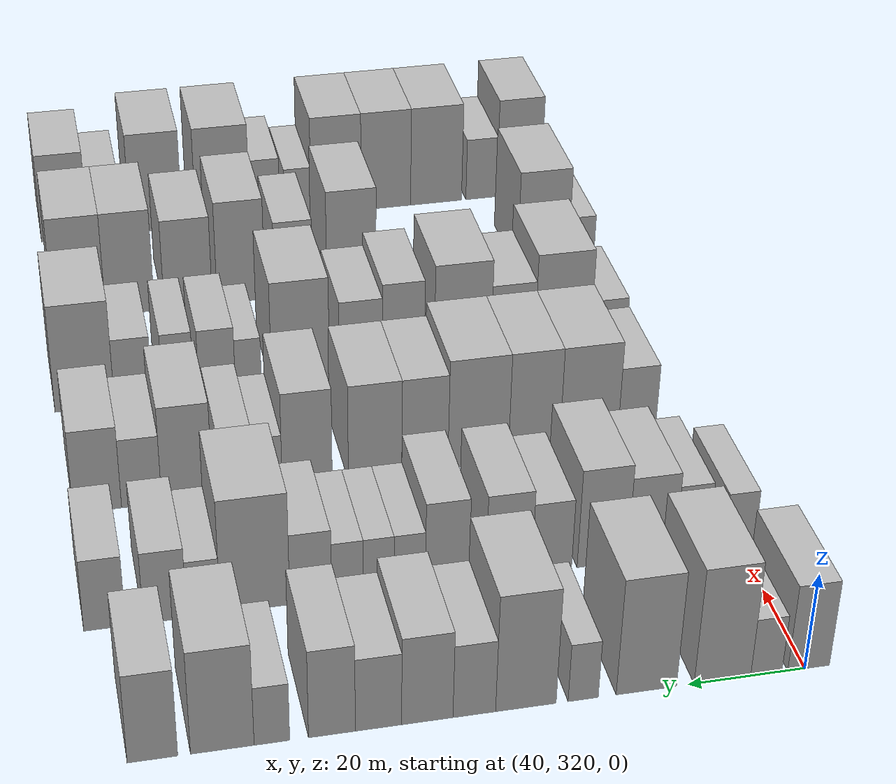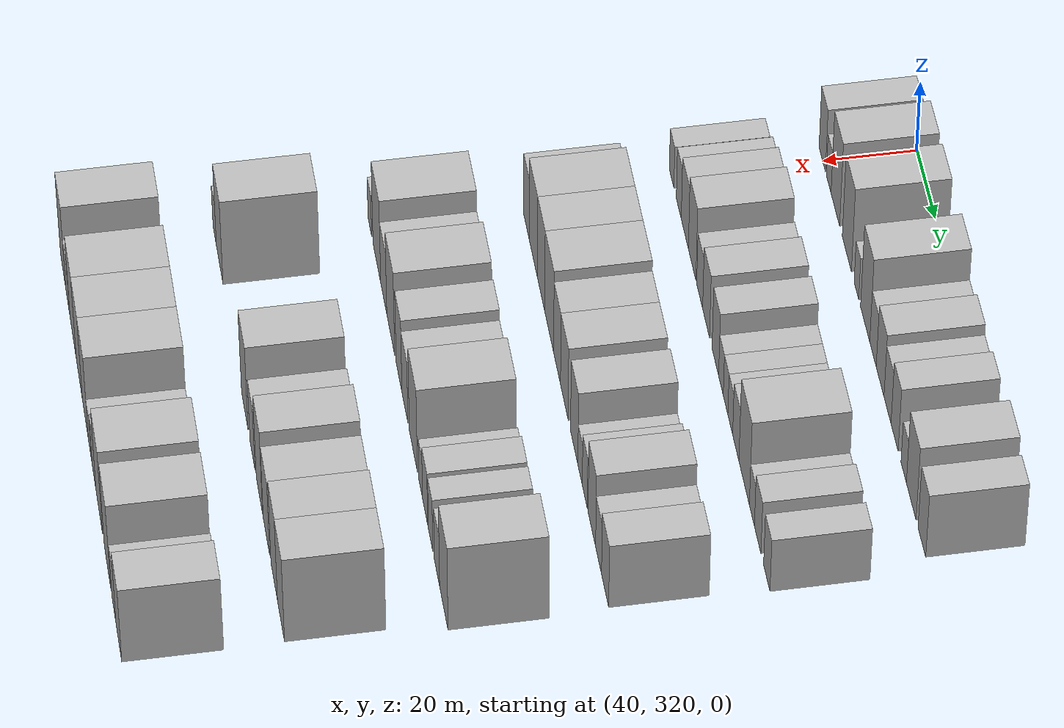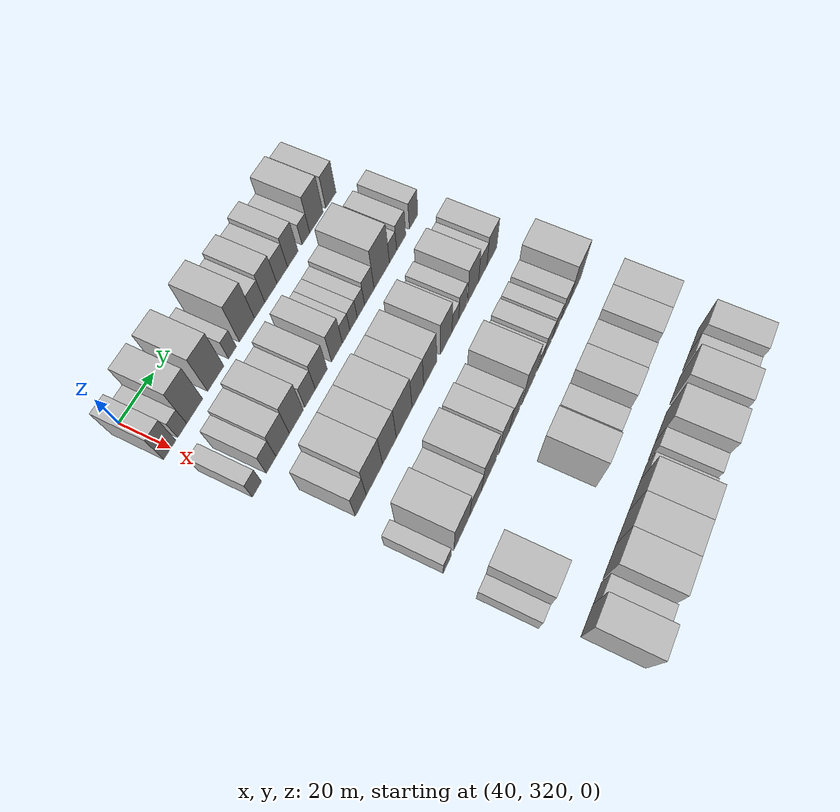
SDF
<sdf version="1.6">
 <world name="default">
  <model name="building_98">
   <static>1</static>
   <pose>50.0000 319.4234 0 0.000000 0.000000 0.000000</pose>
   <link name="link">
    <pose>0 0 9.00 0 0 0</pose>
    <collision name="collision"><geometry><box><size>20.0000 7.2035 18.0000</size></box></geometry></collision>
    <visual name="visual">
     <cast_shadows>0</cast_shadows>
     <geometry><box><size>20.0000 7.2035 18.0000</size></box></geometry>
     <material>
      <script>
       <uri>model://HANNAS_wall/materials/scripts</uri>
       <uri>model://HANNAS_wall/materials/textures</uri>
       <name>vrc/HANNAS_wall</name>
      </script>
     </material>
    </visual>
   </link>
  </model>
  <model name="building_99">
   <static>1</static>
   <pose>50.0000 326.7137 0 0.000000 0.000000 0.000000</pose>
   <link name="link">
    <pose>0 0 6.00 0 0 0</pose>
    <collision name="collision"><geometry><box><size>20.0000 5.3771 12.0000</size></box></geometry></collision>
    <visual name="visual">
     <cast_shadows>0</cast_shadows>
     <geometry><box><size>20.0000 5.3771 12.0000</size></box></geometry>
     <material>
      <script>
       <uri>model://HANNAS_wall/materials/scripts</uri>
       <uri>model://HANNAS_wall/materials/textures</uri>
       <name>vrc/HANNAS_wall</name>
      </script>
     </material>
    </visual>
   </link>
  </model>
  <model name="building_100">
   <static>1</static>
   <pose>50.0000 334.2207 0 0.000000 0.000000 0.000000</pose>
   <link name="link">
    <pose>0 0 12.00 0 0 0</pose>
    <collision name="collision"><geometry><box><size>20.0000 9.6369 24.0000</size></box></geometry></collision>
    <visual name="visual">
     <cast_shadows>0</cast_shadows>
     <geometry><box><size>20.0000 9.6369 24.0000</size></box></geometry>
     <material>
      <script>
       <uri>model://HANNAS_wall/materials/scripts</uri>
       <uri>model://HANNAS_wall/materials/textures</uri>
       <name>vrc/HANNAS_wall</name>
      </script>
     </material>
    </visual>
   </link>
  </model>
  <model name="building_101">
   <static>1</static>
   <pose>50.0000 347.1260 0 0.000000 0.000000 0.000000</pose>
   <link name="link">
    <pose>0 0 12.00 0 0 0</pose>
    <collision name="collision"><geometry><box><size>20.0000 10.1736 24.0000</size></box></geometry></collision>
    <visual name="visual">
     <cast_shadows>0</cast_shadows>
     <geometry><box><size>20.0000 10.1736 24.0000</size></box></geometry>
     <material>
      <script>
       <uri>model://HANNAS_wall/materials/scripts</uri>
       <uri>model://HANNAS_wall/materials/textures</uri>
       <name>vrc/HANNAS_wall</name>
      </script>
     </material>
    </visual>
   </link>
  </model>
  <model name="building_102">
   <static>1</static>
   <pose>50.0000 357.7272 0 0.000000 0.000000 0.000000</pose>
   <link name="link">
    <pose>0 0 6.00 0 0 0</pose>
    <collision name="collision"><geometry><box><size>20.0000 5.0288 12.0000</size></box></geometry></collision>
    <visual name="visual">
     <cast_shadows>0</cast_shadows>
     <geometry><box><size>20.0000 5.0288 12.0000</size></box></geometry>
     <material>
      <script>
       <uri>model://HANNAS_wall/materials/scripts</uri>
       <uri>model://HANNAS_wall/materials/textures</uri>
       <name>vrc/HANNAS_wall</name>
      </script>
     </material>
    </visual>
   </link>
  </model>
  <model name="building_103">
   <static>1</static>
   <pose>50.0000 367.2500 0 0.000000 0.000000 0.000000</pose>
   <link name="link">
    <pose>0 0 12.00 0 0 0</pose>
    <collision name="collision"><geometry><box><size>20.0000 10.0168 24.0000</size></box></geometry></collision>
    <visual name="visual">
     <cast_shadows>0</cast_shadows>
     <geometry><box><size>20.0000 10.0168 24.0000</size></box></geometry>
     <material>
      <script>
       <uri>model://HANNAS_wall/materials/scripts</uri>
       <uri>model://HANNAS_wall/materials/textures</uri>
       <name>vrc/HANNAS_wall</name>
      </script>
     </material>
    </visual>
   </link>
  </model>
  <model name="building_104">
   <static>1</static>
   <pose>50.0000 375.7567 0 0.000000 0.000000 0.000000</pose>
   <link name="link">
    <pose>0 0 7.50 0 0 0</pose>
    <collision name="collision"><geometry><box><size>20.0000 6.9966 15.0000</size></box></geometry></collision>
    <visual name="visual">
     <cast_shadows>0</cast_shadows>
     <geometry><box><size>20.0000 6.9966 15.0000</size></box></geometry>
     <material>
      <script>
       <uri>model://HANNAS_wall/materials/scripts</uri>
       <uri>model://HANNAS_wall/materials/textures</uri>
       <name>vrc/HANNAS_wall</name>
      </script>
     </material>
    </visual>
   </link>
  </model>
  <model name="building_105">
   <static>1</static>
   <pose>50.0000 383.4544 0 0.000000 0.000000 0.000000</pose>
   <link name="link">
    <pose>0 0 9.00 0 0 0</pose>
    <collision name="collision"><geometry><box><size>20.0000 8.3987 18.0000</size></box></geometry></collision>
    <visual name="visual">
     <cast_shadows>0</cast_shadows>
     <geometry><box><size>20.0000 8.3987 18.0000</size></box></geometry>
     <material>
      <script>
       <uri>model://HANNAS_wall/materials/scripts</uri>
       <uri>model://HANNAS_wall/materials/textures</uri>
       <name>vrc/HANNAS_wall</name>
      </script>
     </material>
    </visual>
   </link>
  </model>
  <model name="building_106">
   <static>1</static>
   <pose>50.0000 391.3857 0 0.000000 0.000000 0.000000</pose>
   <link name="link">
    <pose>0 0 7.50 0 0 0</pose>
    <collision name="collision"><geometry><box><size>20.0000 7.4639 15.0000</size></box></geometry></collision>
    <visual name="visual">
     <cast_shadows>0</cast_shadows>
     <geometry><box><size>20.0000 7.4639 15.0000</size></box></geometry>
     <material>
      <script>
       <uri>model://HANNAS_wall/materials/scripts</uri>
       <uri>model://HANNAS_wall/materials/textures</uri>
       <name>vrc/HANNAS_wall</name>
      </script>
     </material>
    </visual>
   </link>
  </model>
  <model name="building_107">
   <static>1</static>
   <pose>50.0000 398.8738 0 0.000000 0.000000 0.000000</pose>
   <link name="link">
    <pose>0 0 9.00 0 0 0</pose>
    <collision name="collision"><geometry><box><size>20.0000 7.5124 18.0000</size></box></geometry></collision>
    <visual name="visual">
     <cast_shadows>0</cast_shadows>
     <geometry><box><size>20.0000 7.5124 18.0000</size></box></geometry>
     <material>
      <script>
       <uri>model://HANNAS_wall/materials/scripts</uri>
       <uri>model://HANNAS_wall/materials/textures</uri>
       <name>vrc/HANNAS_wall</name>
      </script>
     </material>
    </visual>
   </link>
  </model>
  <model name="building_108">
   <static>1</static>
   <pose>50.0000 408.4587 0 0.000000 0.000000 0.000000</pose>
   <link name="link">
    <pose>0 0 6.00 0 0 0</pose>
    <collision name="collision"><geometry><box><size>20.0000 5.6574 12.0000</size></box></geometry></collision>
    <visual name="visual">
     <cast_shadows>0</cast_shadows>
     <geometry><box><size>20.0000 5.6574 12.0000</size></box></geometry>
     <material>
      <script>
       <uri>model://HANNAS_wall/materials/scripts</uri>
       <uri>model://HANNAS_wall/materials/textures</uri>
       <name>vrc/HANNAS_wall</name>
      </script>
     </material>
    </visual>
   </link>
  </model>
  <model name="building_109">
   <static>1</static>
   <pose>50.0000 416.3159 0 0.000000 0.000000 0.000000</pose>
   <link name="link">
    <pose>0 0 10.50 0 0 0</pose>
    <collision name="collision"><geometry><box><size>20.0000 10.0570 21.0000</size></box></geometry></collision>
    <visual name="visual">
     <cast_shadows>0</cast_shadows>
     <geometry><box><size>20.0000 10.0570 21.0000</size></box></geometry>
     <material>
      <script>
       <uri>model://HANNAS_wall/materials/scripts</uri>
       <uri>model://HANNAS_wall/materials/textures</uri>
       <name>vrc/HANNAS_wall</name>
      </script>
     </material>
    </visual>
   </link>
  </model>
  <model name="building_110">
   <static>1</static>
   <pose>50.0000 427.3001 0 0.000000 0.000000 0.000000</pose>
   <link name="link">
    <pose>0 0 9.00 0 0 0</pose>
    <collision name="collision"><geometry><box><size>20.0000 7.9112 18.0000</size></box></geometry></collision>
    <visual name="visual">
     <cast_shadows>0</cast_shadows>
     <geometry><box><size>20.0000 7.9112 18.0000</size></box></geometry>
     <material>
      <script>
       <uri>model://HANNAS_wall/materials/scripts</uri>
       <uri>model://HANNAS_wall/materials/textures</uri>
       <name>vrc/HANNAS_wall</name>
      </script>
     </material>
    </visual>
   </link>
  </model>
  <model name="building_217">
   <static>1</static>
   <pose>82.0000 320.1504 0 0.000000 0.000000 0.000000</pose>
   <link name="link">
    <pose>0 0 6.00 0 0 0</pose>
    <collision name="collision"><geometry><box><size>20.0000 5.5806 12.0000</size></box></geometry></collision>
    <visual name="visual">
     <cast_shadows>0</cast_shadows>
     <geometry><box><size>20.0000 5.5806 12.0000</size></box></geometry>
     <material>
      <script>
       <uri>model://HANNAS_wall/materials/scripts</uri>
       <uri>model://HANNAS_wall/materials/textures</uri>
       <name>vrc/HANNAS_wall</name>
      </script>
     </material>
    </visual>
   </link>
  </model>
  <model name="building_218">
   <static>1</static>
   <pose>82.0000 328.9632 0 0.000000 0.000000 0.000000</pose>
   <link name="link">
    <pose>0 0 7.50 0 0 0</pose>
    <collision name="collision"><geometry><box><size>20.0000 6.0450 15.0000</size></box></geometry></collision>
    <visual name="visual">
     <cast_shadows>0</cast_shadows>
     <geometry><box><size>20.0000 6.0450 15.0000</size></box></geometry>
     <material>
      <script>
       <uri>model://HANNAS_wall/materials/scripts</uri>
       <uri>model://HANNAS_wall/materials/textures</uri>
       <name>vrc/HANNAS_wall</name>
      </script>
     </material>
    </visual>
   </link>
  </model>
  <model name="building_219">
   <static>1</static>
   <pose>82.0000 336.3390 0 0.000000 0.000000 0.000000</pose>
   <link name="link">
    <pose>0 0 9.00 0 0 0</pose>
    <collision name="collision"><geometry><box><size>20.0000 8.7066 18.0000</size></box></geometry></collision>
    <visual name="visual">
     <cast_shadows>0</cast_shadows>
     <geometry><box><size>20.0000 8.7066 18.0000</size></box></geometry>
     <material>
      <script>
       <uri>model://HANNAS_wall/materials/scripts</uri>
       <uri>model://HANNAS_wall/materials/textures</uri>
       <name>vrc/HANNAS_wall</name>
      </script>
     </material>
    </visual>
   </link>
  </model>
  <model name="building_220">
   <static>1</static>
   <pose>82.0000 345.2234 0 0.000000 0.000000 0.000000</pose>
   <link name="link">
    <pose>0 0 10.50 0 0 0</pose>
    <collision name="collision"><geometry><box><size>20.0000 9.0622 21.0000</size></box></geometry></collision>
    <visual name="visual">
     <cast_shadows>0</cast_shadows>
     <geometry><box><size>20.0000 9.0622 21.0000</size></box></geometry>
     <material>
      <script>
       <uri>model://HANNAS_wall/materials/scripts</uri>
       <uri>model://HANNAS_wall/materials/textures</uri>
       <name>vrc/HANNAS_wall</name>
      </script>
     </material>
    </visual>
   </link>
  </model>
  <model name="building_221">
   <static>1</static>
   <pose>82.0000 354.3234 0 0.000000 0.000000 0.000000</pose>
   <link name="link">
    <pose>0 0 7.50 0 0 0</pose>
    <collision name="collision"><geometry><box><size>20.0000 7.1379 15.0000</size></box></geometry></collision>
    <visual name="visual">
     <cast_shadows>0</cast_shadows>
     <geometry><box><size>20.0000 7.1379 15.0000</size></box></geometry>
     <material>
      <script>
       <uri>model://HANNAS_wall/materials/scripts</uri>
       <uri>model://HANNAS_wall/materials/textures</uri>
       <name>vrc/HANNAS_wall</name>
      </script>
     </material>
    </visual>
   </link>
  </model>
  <model name="building_222">
   <static>1</static>
   <pose>82.0000 361.9955 0 0.000000 0.000000 0.000000</pose>
   <link name="link">
    <pose>0 0 9.00 0 0 0</pose>
    <collision name="collision"><geometry><box><size>20.0000 8.2062 18.0000</size></box></geometry></collision>
    <visual name="visual">
     <cast_shadows>0</cast_shadows>
     <geometry><box><size>20.0000 8.2062 18.0000</size></box></geometry>
     <material>
      <script>
       <uri>model://HANNAS_wall/materials/scripts</uri>
       <uri>model://HANNAS_wall/materials/textures</uri>
       <name>vrc/HANNAS_wall</name>
      </script>
     </material>
    </visual>
   </link>
  </model>
  <model name="building_223">
   <static>1</static>
   <pose>82.0000 372.9574 0 0.000000 0.000000 0.000000</pose>
   <link name="link">
    <pose>0 0 9.00 0 0 0</pose>
    <collision name="collision"><geometry><box><size>20.0000 7.7176 18.0000</size></box></geometry></collision>
    <visual name="visual">
     <cast_shadows>0</cast_shadows>
     <geometry><box><size>20.0000 7.7176 18.0000</size></box></geometry>
     <material>
      <script>
       <uri>model://HANNAS_wall/materials/scripts</uri>
       <uri>model://HANNAS_wall/materials/textures</uri>
       <name>vrc/HANNAS_wall</name>
      </script>
     </material>
    </visual>
   </link>
  </model>
  <model name="building_224">
   <static>1</static>
   <pose>82.0000 379.5483 0 0.000000 0.000000 0.000000</pose>
   <link name="link">
    <pose>0 0 6.00 0 0 0</pose>
    <collision name="collision"><geometry><box><size>20.0000 5.4642 12.0000</size></box></geometry></collision>
    <visual name="visual">
     <cast_shadows>0</cast_shadows>
     <geometry><box><size>20.0000 5.4642 12.0000</size></box></geometry>
     <material>
      <script>
       <uri>model://HANNAS_wall/materials/scripts</uri>
       <uri>model://HANNAS_wall/materials/textures</uri>
       <name>vrc/HANNAS_wall</name>
      </script>
     </material>
    </visual>
   </link>
  </model>
  <model name="building_225">
   <static>1</static>
   <pose>82.0000 384.9498 0 0.000000 0.000000 0.000000</pose>
   <link name="link">
    <pose>0 0 6.00 0 0 0</pose>
    <collision name="collision"><geometry><box><size>20.0000 5.3387 12.0000</size></box></geometry></collision>
    <visual name="visual">
     <cast_shadows>0</cast_shadows>
     <geometry><box><size>20.0000 5.3387 12.0000</size></box></geometry>
     <material>
      <script>
       <uri>model://HANNAS_wall/materials/scripts</uri>
       <uri>model://HANNAS_wall/materials/textures</uri>
       <name>vrc/HANNAS_wall</name>
      </script>
     </material>
    </visual>
   </link>
  </model>
  <model name="building_226">
   <static>1</static>
   <pose>82.0000 390.3880 0 0.000000 0.000000 0.000000</pose>
   <link name="link">
    <pose>0 0 6.00 0 0 0</pose>
    <collision name="collision"><geometry><box><size>20.0000 5.5377 12.0000</size></box></geometry></collision>
    <visual name="visual">
     <cast_shadows>0</cast_shadows>
     <geometry><box><size>20.0000 5.5377 12.0000</size></box></geometry>
     <material>
      <script>
       <uri>model://HANNAS_wall/materials/scripts</uri>
       <uri>model://HANNAS_wall/materials/textures</uri>
       <name>vrc/HANNAS_wall</name>
      </script>
     </material>
    </visual>
   </link>
  </model>
  <model name="building_227">
   <static>1</static>
   <pose>82.0000 396.7594 0 0.000000 0.000000 0.000000</pose>
   <link name="link">
    <pose>0 0 7.50 0 0 0</pose>
    <collision name="collision"><geometry><box><size>20.0000 7.2050 15.0000</size></box></geometry></collision>
    <visual name="visual">
     <cast_shadows>0</cast_shadows>
     <geometry><box><size>20.0000 7.2050 15.0000</size></box></geometry>
     <material>
      <script>
       <uri>model://HANNAS_wall/materials/scripts</uri>
       <uri>model://HANNAS_wall/materials/textures</uri>
       <name>vrc/HANNAS_wall</name>
      </script>
     </material>
    </visual>
   </link>
  </model>
  <model name="building_228">
   <static>1</static>
   <pose>82.0000 406.3269 0 0.000000 0.000000 0.000000</pose>
   <link name="link">
    <pose>0 0 12.00 0 0 0</pose>
    <collision name="collision"><geometry><box><size>20.0000 11.9299 24.0000</size></box></geometry></collision>
    <visual name="visual">
     <cast_shadows>0</cast_shadows>
     <geometry><box><size>20.0000 11.9299 24.0000</size></box></geometry>
     <material>
      <script>
       <uri>model://HANNAS_wall/materials/scripts</uri>
       <uri>model://HANNAS_wall/materials/textures</uri>
       <name>vrc/HANNAS_wall</name>
      </script>
     </material>
    </visual>
   </link>
  </model>
  <model name="building_229">
   <static>1</static>
   <pose>82.0000 415.1421 0 0.000000 0.000000 0.000000</pose>
   <link name="link">
    <pose>0 0 6.00 0 0 0</pose>
    <collision name="collision"><geometry><box><size>20.0000 5.7005 12.0000</size></box></geometry></collision>
    <visual name="visual">
     <cast_shadows>0</cast_shadows>
     <geometry><box><size>20.0000 5.7005 12.0000</size></box></geometry>
     <material>
      <script>
       <uri>model://HANNAS_wall/materials/scripts</uri>
       <uri>model://HANNAS_wall/materials/textures</uri>
       <name>vrc/HANNAS_wall</name>
      </script>
     </material>
    </visual>
   </link>
  </model>
  <model name="building_230">
   <static>1</static>
   <pose>82.0000 421.6486 0 0.000000 0.000000 0.000000</pose>
   <link name="link">
    <pose>0 0 7.50 0 0 0</pose>
    <collision name="collision"><geometry><box><size>20.0000 7.3124 15.0000</size></box></geometry></collision>
    <visual name="visual">
     <cast_shadows>0</cast_shadows>
     <geometry><box><size>20.0000 7.3124 15.0000</size></box></geometry>
     <material>
      <script>
       <uri>model://HANNAS_wall/materials/scripts</uri>
       <uri>model://HANNAS_wall/materials/textures</uri>
       <name>vrc/HANNAS_wall</name>
      </script>
     </material>
    </visual>
   </link>
  </model>
  <model name="building_231">
   <static>1</static>
   <pose>82.0000 431.8260 0 0.000000 0.000000 0.000000</pose>
   <link name="link">
    <pose>0 0 7.50 0 0 0</pose>
    <collision name="collision"><geometry><box><size>20.0000 7.0425 15.0000</size></box></geometry></collision>
    <visual name="visual">
     <cast_shadows>0</cast_shadows>
     <geometry><box><size>20.0000 7.0425 15.0000</size></box></geometry>
     <material>
      <script>
       <uri>model://HANNAS_wall/materials/scripts</uri>
       <uri>model://HANNAS_wall/materials/textures</uri>
       <name>vrc/HANNAS_wall</name>
      </script>
     </material>
    </visual>
   </link>
  </model>
  <model name="building_340">
   <static>1</static>
   <pose>114.0000 329.4167 0 0.000000 0.000000 0.000000</pose>
   <link name="link">
    <pose>0 0 9.00 0 0 0</pose>
    <collision name="collision"><geometry><box><size>20.0000 7.3015 18.0000</size></box></geometry></collision>
    <visual name="visual">
     <cast_shadows>0</cast_shadows>
     <geometry><box><size>20.0000 7.3015 18.0000</size></box></geometry>
     <material>
      <script>
       <uri>model://HANNAS_wall/materials/scripts</uri>
       <uri>model://HANNAS_wall/materials/textures</uri>
       <name>vrc/HANNAS_wall</name>
      </script>
     </material>
    </visual>
   </link>
  </model>
  <model name="building_341">
   <static>1</static>
   <pose>114.0000 338.6593 0 0.000000 0.000000 0.000000</pose>
   <link name="link">
    <pose>0 0 12.00 0 0 0</pose>
    <collision name="collision"><geometry><box><size>20.0000 11.1837 24.0000</size></box></geometry></collision>
    <visual name="visual">
     <cast_shadows>0</cast_shadows>
     <geometry><box><size>20.0000 11.1837 24.0000</size></box></geometry>
     <material>
      <script>
       <uri>model://HANNAS_wall/materials/scripts</uri>
       <uri>model://HANNAS_wall/materials/textures</uri>
       <name>vrc/HANNAS_wall</name>
      </script>
     </material>
    </visual>
   </link>
  </model>
  <model name="building_342">
   <static>1</static>
   <pose>114.0000 349.1422 0 0.000000 0.000000 0.000000</pose>
   <link name="link">
    <pose>0 0 12.00 0 0 0</pose>
    <collision name="collision"><geometry><box><size>20.0000 9.7821 24.0000</size></box></geometry></collision>
    <visual name="visual">
     <cast_shadows>0</cast_shadows>
     <geometry><box><size>20.0000 9.7821 24.0000</size></box></geometry>
     <material>
      <script>
       <uri>model://HANNAS_wall/materials/scripts</uri>
       <uri>model://HANNAS_wall/materials/textures</uri>
       <name>vrc/HANNAS_wall</name>
      </script>
     </material>
    </visual>
   </link>
  </model>
  <model name="building_343">
   <static>1</static>
   <pose>114.0000 359.7794 0 0.000000 0.000000 0.000000</pose>
   <link name="link">
    <pose>0 0 12.00 0 0 0</pose>
    <collision name="collision"><geometry><box><size>20.0000 11.4923 24.0000</size></box></geometry></collision>
    <visual name="visual">
     <cast_shadows>0</cast_shadows>
     <geometry><box><size>20.0000 11.4923 24.0000</size></box></geometry>
     <material>
      <script>
       <uri>model://HANNAS_wall/materials/scripts</uri>
       <uri>model://HANNAS_wall/materials/textures</uri>
       <name>vrc/HANNAS_wall</name>
      </script>
     </material>
    </visual>
   </link>
  </model>
  <model name="building_344">
   <static>1</static>
   <pose>114.0000 369.8839 0 0.000000 0.000000 0.000000</pose>
   <link name="link">
    <pose>0 0 10.50 0 0 0</pose>
    <collision name="collision"><geometry><box><size>20.0000 8.7167 21.0000</size></box></geometry></collision>
    <visual name="visual">
     <cast_shadows>0</cast_shadows>
     <geometry><box><size>20.0000 8.7167 21.0000</size></box></geometry>
     <material>
      <script>
       <uri>model://HANNAS_wall/materials/scripts</uri>
       <uri>model://HANNAS_wall/materials/textures</uri>
       <name>vrc/HANNAS_wall</name>
      </script>
     </material>
    </visual>
   </link>
  </model>
  <model name="building_345">
   <static>1</static>
   <pose>114.0000 379.2423 0 0.000000 0.000000 0.000000</pose>
   <link name="link">
    <pose>0 0 10.50 0 0 0</pose>
    <collision name="collision"><geometry><box><size>20.0000 10.0000 21.0000</size></box></geometry></collision>
    <visual name="visual">
     <cast_shadows>0</cast_shadows>
     <geometry><box><size>20.0000 10.0000 21.0000</size></box></geometry>
     <material>
      <script>
       <uri>model://HANNAS_wall/materials/scripts</uri>
       <uri>model://HANNAS_wall/materials/textures</uri>
       <name>vrc/HANNAS_wall</name>
      </script>
     </material>
    </visual>
   </link>
  </model>
  <model name="building_346">
   <static>1</static>
   <pose>114.0000 391.8754 0 0.000000 0.000000 0.000000</pose>
   <link name="link">
    <pose>0 0 10.50 0 0 0</pose>
    <collision name="collision"><geometry><box><size>20.0000 9.2662 21.0000</size></box></geometry></collision>
    <visual name="visual">
     <cast_shadows>0</cast_shadows>
     <geometry><box><size>20.0000 9.2662 21.0000</size></box></geometry>
     <material>
      <script>
       <uri>model://HANNAS_wall/materials/scripts</uri>
       <uri>model://HANNAS_wall/materials/textures</uri>
       <name>vrc/HANNAS_wall</name>
      </script>
     </material>
    </visual>
   </link>
  </model>
  <model name="building_347">
   <static>1</static>
   <pose>114.0000 399.2876 0 0.000000 0.000000 0.000000</pose>
   <link name="link">
    <pose>0 0 6.00 0 0 0</pose>
    <collision name="collision"><geometry><box><size>20.0000 5.5583 12.0000</size></box></geometry></collision>
    <visual name="visual">
     <cast_shadows>0</cast_shadows>
     <geometry><box><size>20.0000 5.5583 12.0000</size></box></geometry>
     <material>
      <script>
       <uri>model://HANNAS_wall/materials/scripts</uri>
       <uri>model://HANNAS_wall/materials/textures</uri>
       <name>vrc/HANNAS_wall</name>
      </script>
     </material>
    </visual>
   </link>
  </model>
  <model name="building_348">
   <static>1</static>
   <pose>114.0000 405.1894 0 0.000000 0.000000 0.000000</pose>
   <link name="link">
    <pose>0 0 7.50 0 0 0</pose>
    <collision name="collision"><geometry><box><size>20.0000 6.2451 15.0000</size></box></geometry></collision>
    <visual name="visual">
     <cast_shadows>0</cast_shadows>
     <geometry><box><size>20.0000 6.2451 15.0000</size></box></geometry>
     <material>
      <script>
       <uri>model://HANNAS_wall/materials/scripts</uri>
       <uri>model://HANNAS_wall/materials/textures</uri>
       <name>vrc/HANNAS_wall</name>
      </script>
     </material>
    </visual>
   </link>
  </model>
  <model name="building_349">
   <static>1</static>
   <pose>114.0000 413.9465 0 0.000000 0.000000 0.000000</pose>
   <link name="link">
    <pose>0 0 10.50 0 0 0</pose>
    <collision name="collision"><geometry><box><size>20.0000 9.2692 21.0000</size></box></geometry></collision>
    <visual name="visual">
     <cast_shadows>0</cast_shadows>
     <geometry><box><size>20.0000 9.2692 21.0000</size></box></geometry>
     <material>
      <script>
       <uri>model://HANNAS_wall/materials/scripts</uri>
       <uri>model://HANNAS_wall/materials/textures</uri>
       <name>vrc/HANNAS_wall</name>
      </script>
     </material>
    </visual>
   </link>
  </model>
  <model name="building_350">
   <static>1</static>
   <pose>114.0000 422.2194 0 0.000000 0.000000 0.000000</pose>
   <link name="link">
    <pose>0 0 7.50 0 0 0</pose>
    <collision name="collision"><geometry><box><size>20.0000 7.2765 15.0000</size></box></geometry></collision>
    <visual name="visual">
     <cast_shadows>0</cast_shadows>
     <geometry><box><size>20.0000 7.2765 15.0000</size></box></geometry>
     <material>
      <script>
       <uri>model://HANNAS_wall/materials/scripts</uri>
       <uri>model://HANNAS_wall/materials/textures</uri>
       <name>vrc/HANNAS_wall</name>
      </script>
     </material>
    </visual>
   </link>
  </model>
  <model name="building_351">
   <static>1</static>
   <pose>114.0000 430.2244 0 0.000000 0.000000 0.000000</pose>
   <link name="link">
    <pose>0 0 9.00 0 0 0</pose>
    <collision name="collision"><geometry><box><size>20.0000 8.7334 18.0000</size></box></geometry></collision>
    <visual name="visual">
     <cast_shadows>0</cast_shadows>
     <geometry><box><size>20.0000 8.7334 18.0000</size></box></geometry>
     <material>
      <script>
       <uri>model://HANNAS_wall/materials/scripts</uri>
       <uri>model://HANNAS_wall/materials/textures</uri>
       <name>vrc/HANNAS_wall</name>
      </script>
     </material>
    </visual>
   </link>
  </model>
  <model name="building_459">
   <static>1</static>
   <pose>146.0000 324.3936 0 0.000000 0.000000 0.000000</pose>
   <link name="link">
    <pose>0 0 6.00 0 0 0</pose>
    <collision name="collision"><geometry><box><size>20.0000 5.4744 12.0000</size></box></geometry></collision>
    <visual name="visual">
     <cast_shadows>0</cast_shadows>
     <geometry><box><size>20.0000 5.4744 12.0000</size></box></geometry>
     <material>
      <script>
       <uri>model://HANNAS_wall/materials/scripts</uri>
       <uri>model://HANNAS_wall/materials/textures</uri>
       <name>vrc/HANNAS_wall</name>
      </script>
     </material>
    </visual>
   </link>
  </model>
  <model name="building_460">
   <static>1</static>
   <pose>146.0000 334.8849 0 0.000000 0.000000 0.000000</pose>
   <link name="link">
    <pose>0 0 12.00 0 0 0</pose>
    <collision name="collision"><geometry><box><size>20.0000 11.5083 24.0000</size></box></geometry></collision>
    <visual name="visual">
     <cast_shadows>0</cast_shadows>
     <geometry><box><size>20.0000 11.5083 24.0000</size></box></geometry>
     <material>
      <script>
       <uri>model://HANNAS_wall/materials/scripts</uri>
       <uri>model://HANNAS_wall/materials/textures</uri>
       <name>vrc/HANNAS_wall</name>
      </script>
     </material>
    </visual>
   </link>
  </model>
  <model name="building_461">
   <static>1</static>
   <pose>146.0000 345.1050 0 0.000000 0.000000 0.000000</pose>
   <link name="link">
    <pose>0 0 9.00 0 0 0</pose>
    <collision name="collision"><geometry><box><size>20.0000 8.9319 18.0000</size></box></geometry></collision>
    <visual name="visual">
     <cast_shadows>0</cast_shadows>
     <geometry><box><size>20.0000 8.9319 18.0000</size></box></geometry>
     <material>
      <script>
       <uri>model://HANNAS_wall/materials/scripts</uri>
       <uri>model://HANNAS_wall/materials/textures</uri>
       <name>vrc/HANNAS_wall</name>
      </script>
     </material>
    </visual>
   </link>
  </model>
  <model name="building_462">
   <static>1</static>
   <pose>146.0000 355.3089 0 0.000000 0.000000 0.000000</pose>
   <link name="link">
    <pose>0 0 12.00 0 0 0</pose>
    <collision name="collision"><geometry><box><size>20.0000 11.4757 24.0000</size></box></geometry></collision>
    <visual name="visual">
     <cast_shadows>0</cast_shadows>
     <geometry><box><size>20.0000 11.4757 24.0000</size></box></geometry>
     <material>
      <script>
       <uri>model://HANNAS_wall/materials/scripts</uri>
       <uri>model://HANNAS_wall/materials/textures</uri>
       <name>vrc/HANNAS_wall</name>
      </script>
     </material>
    </visual>
   </link>
  </model>
  <model name="building_463">
   <static>1</static>
   <pose>146.0000 367.2634 0 0.000000 0.000000 0.000000</pose>
   <link name="link">
    <pose>0 0 10.50 0 0 0</pose>
    <collision name="collision"><geometry><box><size>20.0000 8.4334 21.0000</size></box></geometry></collision>
    <visual name="visual">
     <cast_shadows>0</cast_shadows>
     <geometry><box><size>20.0000 8.4334 21.0000</size></box></geometry>
     <material>
      <script>
       <uri>model://HANNAS_wall/materials/scripts</uri>
       <uri>model://HANNAS_wall/materials/textures</uri>
       <name>vrc/HANNAS_wall</name>
      </script>
     </material>
    </visual>
   </link>
  </model>
  <model name="building_464">
   <static>1</static>
   <pose>146.0000 375.7472 0 0.000000 0.000000 0.000000</pose>
   <link name="link">
    <pose>0 0 9.00 0 0 0</pose>
    <collision name="collision"><geometry><box><size>20.0000 8.5342 18.0000</size></box></geometry></collision>
    <visual name="visual">
     <cast_shadows>0</cast_shadows>
     <geometry><box><size>20.0000 8.5342 18.0000</size></box></geometry>
     <material>
      <script>
       <uri>model://HANNAS_wall/materials/scripts</uri>
       <uri>model://HANNAS_wall/materials/textures</uri>
       <name>vrc/HANNAS_wall</name>
      </script>
     </material>
    </visual>
   </link>
  </model>
  <model name="building_465">
   <static>1</static>
   <pose>146.0000 387.7284 0 0.000000 0.000000 0.000000</pose>
   <link name="link">
    <pose>0 0 12.00 0 0 0</pose>
    <collision name="collision"><geometry><box><size>20.0000 11.4282 24.0000</size></box></geometry></collision>
    <visual name="visual">
     <cast_shadows>0</cast_shadows>
     <geometry><box><size>20.0000 11.4282 24.0000</size></box></geometry>
     <material>
      <script>
       <uri>model://HANNAS_wall/materials/scripts</uri>
       <uri>model://HANNAS_wall/materials/textures</uri>
       <name>vrc/HANNAS_wall</name>
      </script>
     </material>
    </visual>
   </link>
  </model>
  <model name="building_466">
   <static>1</static>
   <pose>146.0000 397.9992 0 0.000000 0.000000 0.000000</pose>
   <link name="link">
    <pose>0 0 6.00 0 0 0</pose>
    <collision name="collision"><geometry><box><size>20.0000 5.1134 12.0000</size></box></geometry></collision>
    <visual name="visual">
     <cast_shadows>0</cast_shadows>
     <geometry><box><size>20.0000 5.1134 12.0000</size></box></geometry>
     <material>
      <script>
       <uri>model://HANNAS_wall/materials/scripts</uri>
       <uri>model://HANNAS_wall/materials/textures</uri>
       <name>vrc/HANNAS_wall</name>
      </script>
     </material>
    </visual>
   </link>
  </model>
  <model name="building_467">
   <static>1</static>
   <pose>146.0000 404.1213 0 0.000000 0.000000 0.000000</pose>
   <link name="link">
    <pose>0 0 7.50 0 0 0</pose>
    <collision name="collision"><geometry><box><size>20.0000 7.1309 15.0000</size></box></geometry></collision>
    <visual name="visual">
     <cast_shadows>0</cast_shadows>
     <geometry><box><size>20.0000 7.1309 15.0000</size></box></geometry>
     <material>
      <script>
       <uri>model://HANNAS_wall/materials/scripts</uri>
       <uri>model://HANNAS_wall/materials/textures</uri>
       <name>vrc/HANNAS_wall</name>
      </script>
     </material>
    </visual>
   </link>
  </model>
  <model name="building_468">
   <static>1</static>
   <pose>146.0000 411.7206 0 0.000000 0.000000 0.000000</pose>
   <link name="link">
    <pose>0 0 7.50 0 0 0</pose>
    <collision name="collision"><geometry><box><size>20.0000 6.0676 15.0000</size></box></geometry></collision>
    <visual name="visual">
     <cast_shadows>0</cast_shadows>
     <geometry><box><size>20.0000 6.0676 15.0000</size></box></geometry>
     <material>
      <script>
       <uri>model://HANNAS_wall/materials/scripts</uri>
       <uri>model://HANNAS_wall/materials/textures</uri>
       <name>vrc/HANNAS_wall</name>
      </script>
     </material>
    </visual>
   </link>
  </model>
  <model name="building_469">
   <static>1</static>
   <pose>146.0000 420.4199 0 0.000000 0.000000 0.000000</pose>
   <link name="link">
    <pose>0 0 7.50 0 0 0</pose>
    <collision name="collision"><geometry><box><size>20.0000 7.3310 15.0000</size></box></geometry></collision>
    <visual name="visual">
     <cast_shadows>0</cast_shadows>
     <geometry><box><size>20.0000 7.3310 15.0000</size></box></geometry>
     <material>
      <script>
       <uri>model://HANNAS_wall/materials/scripts</uri>
       <uri>model://HANNAS_wall/materials/textures</uri>
       <name>vrc/HANNAS_wall</name>
      </script>
     </material>
    </visual>
   </link>
  </model>
  <model name="building_470">
   <static>1</static>
   <pose>146.0000 429.8038 0 0.000000 0.000000 0.000000</pose>
   <link name="link">
    <pose>0 0 12.00 0 0 0</pose>
    <collision name="collision"><geometry><box><size>20.0000 11.4368 24.0000</size></box></geometry></collision>
    <visual name="visual">
     <cast_shadows>0</cast_shadows>
     <geometry><box><size>20.0000 11.4368 24.0000</size></box></geometry>
     <material>
      <script>
       <uri>model://HANNAS_wall/materials/scripts</uri>
       <uri>model://HANNAS_wall/materials/textures</uri>
       <name>vrc/HANNAS_wall</name>
      </script>
     </material>
    </visual>
   </link>
  </model>
  <model name="building_577">
   <static>1</static>
   <pose>178.0000 322.0108 0 0.000000 0.000000 0.000000</pose>
   <link name="link">
    <pose>0 0 6.00 0 0 0</pose>
    <collision name="collision"><geometry><box><size>20.0000 5.6308 12.0000</size></box></geometry></collision>
    <visual name="visual">
     <cast_shadows>0</cast_shadows>
     <geometry><box><size>20.0000 5.6308 12.0000</size></box></geometry>
     <material>
      <script>
       <uri>model://HANNAS_wall/materials/scripts</uri>
       <uri>model://HANNAS_wall/materials/textures</uri>
       <name>vrc/HANNAS_wall</name>
      </script>
     </material>
    </visual>
   </link>
  </model>
  <model name="building_578">
   <static>1</static>
   <pose>178.0000 330.3738 0 0.000000 0.000000 0.000000</pose>
   <link name="link">
    <pose>0 0 12.00 0 0 0</pose>
    <collision name="collision"><geometry><box><size>20.0000 11.0951 24.0000</size></box></geometry></collision>
    <visual name="visual">
     <cast_shadows>0</cast_shadows>
     <geometry><box><size>20.0000 11.0951 24.0000</size></box></geometry>
     <material>
      <script>
       <uri>model://HANNAS_wall/materials/scripts</uri>
       <uri>model://HANNAS_wall/materials/textures</uri>
       <name>vrc/HANNAS_wall</name>
      </script>
     </material>
    </visual>
   </link>
  </model>
  <model name="building_579">
   <static>1</static>
   <pose>178.0000 371.6042 0 0.000000 0.000000 0.000000</pose>
   <link name="link">
    <pose>0 0 12.00 0 0 0</pose>
    <collision name="collision"><geometry><box><size>20.0000 10.4553 24.0000</size></box></geometry></collision>
    <visual name="visual">
     <cast_shadows>0</cast_shadows>
     <geometry><box><size>20.0000 10.4553 24.0000</size></box></geometry>
     <material>
      <script>
       <uri>model://HANNAS_wall/materials/scripts</uri>
       <uri>model://HANNAS_wall/materials/textures</uri>
       <name>vrc/HANNAS_wall</name>
      </script>
     </material>
    </visual>
   </link>
  </model>
  <model name="building_580">
   <static>1</static>
   <pose>178.0000 383.8302 0 0.000000 0.000000 0.000000</pose>
   <link name="link">
    <pose>0 0 9.00 0 0 0</pose>
    <collision name="collision"><geometry><box><size>20.0000 7.9966 18.0000</size></box></geometry></collision>
    <visual name="visual">
     <cast_shadows>0</cast_shadows>
     <geometry><box><size>20.0000 7.9966 18.0000</size></box></geometry>
     <material>
      <script>
       <uri>model://HANNAS_wall/materials/scripts</uri>
       <uri>model://HANNAS_wall/materials/textures</uri>
       <name>vrc/HANNAS_wall</name>
      </script>
     </material>
    </visual>
   </link>
  </model>
  <model name="building_581">
   <static>1</static>
   <pose>178.0000 394.8241 0 0.000000 0.000000 0.000000</pose>
   <link name="link">
    <pose>0 0 12.00 0 0 0</pose>
    <collision name="collision"><geometry><box><size>20.0000 9.9912 24.0000</size></box></geometry></collision>
    <visual name="visual">
     <cast_shadows>0</cast_shadows>
     <geometry><box><size>20.0000 9.9912 24.0000</size></box></geometry>
     <material>
      <script>
       <uri>model://HANNAS_wall/materials/scripts</uri>
       <uri>model://HANNAS_wall/materials/textures</uri>
       <name>vrc/HANNAS_wall</name>
      </script>
     </material>
    </visual>
   </link>
  </model>
  <model name="building_582">
   <static>1</static>
   <pose>178.0000 405.8186 0 0.000000 0.000000 0.000000</pose>
   <link name="link">
    <pose>0 0 10.50 0 0 0</pose>
    <collision name="collision"><geometry><box><size>20.0000 9.9978 21.0000</size></box></geometry></collision>
    <visual name="visual">
     <cast_shadows>0</cast_shadows>
     <geometry><box><size>20.0000 9.9978 21.0000</size></box></geometry>
     <material>
      <script>
       <uri>model://HANNAS_wall/materials/scripts</uri>
       <uri>model://HANNAS_wall/materials/textures</uri>
       <name>vrc/HANNAS_wall</name>
      </script>
     </material>
    </visual>
   </link>
  </model>
  <model name="building_583">
   <static>1</static>
   <pose>178.0000 417.8357 0 0.000000 0.000000 0.000000</pose>
   <link name="link">
    <pose>0 0 12.00 0 0 0</pose>
    <collision name="collision"><geometry><box><size>20.0000 10.0364 24.0000</size></box></geometry></collision>
    <visual name="visual">
     <cast_shadows>0</cast_shadows>
     <geometry><box><size>20.0000 10.0364 24.0000</size></box></geometry>
     <material>
      <script>
       <uri>model://HANNAS_wall/materials/scripts</uri>
       <uri>model://HANNAS_wall/materials/textures</uri>
       <name>vrc/HANNAS_wall</name>
      </script>
     </material>
    </visual>
   </link>
  </model>
  <model name="building_584">
   <static>1</static>
   <pose>178.0000 428.2243 0 0.000000 0.000000 0.000000</pose>
   <link name="link">
    <pose>0 0 12.00 0 0 0</pose>
    <collision name="collision"><geometry><box><size>20.0000 10.7408 24.0000</size></box></geometry></collision>
    <visual name="visual">
     <cast_shadows>0</cast_shadows>
     <geometry><box><size>20.0000 10.7408 24.0000</size></box></geometry>
     <material>
      <script>
       <uri>model://HANNAS_wall/materials/scripts</uri>
       <uri>model://HANNAS_wall/materials/textures</uri>
       <name>vrc/HANNAS_wall</name>
      </script>
     </material>
    </visual>
   </link>
  </model>
  <model name="building_694">
   <static>1</static>
   <pose>210.0000 327.3470 0 0.000000 0.000000 0.000000</pose>
   <link name="link">
    <pose>0 0 12.00 0 0 0</pose>
    <collision name="collision"><geometry><box><size>20.0000 10.2071 24.0000</size></box></geometry></collision>
    <visual name="visual">
     <cast_shadows>0</cast_shadows>
     <geometry><box><size>20.0000 10.2071 24.0000</size></box></geometry>
     <material>
      <script>
       <uri>model://HANNAS_wall/materials/scripts</uri>
       <uri>model://HANNAS_wall/materials/textures</uri>
       <name>vrc/HANNAS_wall</name>
      </script>
     </material>
    </visual>
   </link>
  </model>
  <model name="building_695">
   <static>1</static>
   <pose>210.0000 335.9866 0 0.000000 0.000000 0.000000</pose>
   <link name="link">
    <pose>0 0 7.50 0 0 0</pose>
    <collision name="collision"><geometry><box><size>20.0000 7.0720 15.0000</size></box></geometry></collision>
    <visual name="visual">
     <cast_shadows>0</cast_shadows>
     <geometry><box><size>20.0000 7.0720 15.0000</size></box></geometry>
     <material>
      <script>
       <uri>model://HANNAS_wall/materials/scripts</uri>
       <uri>model://HANNAS_wall/materials/textures</uri>
       <name>vrc/HANNAS_wall</name>
      </script>
     </material>
    </visual>
   </link>
  </model>
  <model name="building_696">
   <static>1</static>
   <pose>210.0000 346.3486 0 0.000000 0.000000 0.000000</pose>
   <link name="link">
    <pose>0 0 12.00 0 0 0</pose>
    <collision name="collision"><geometry><box><size>20.0000 11.6521 24.0000</size></box></geometry></collision>
    <visual name="visual">
     <cast_shadows>0</cast_shadows>
     <geometry><box><size>20.0000 11.6521 24.0000</size></box></geometry>
     <material>
      <script>
       <uri>model://HANNAS_wall/materials/scripts</uri>
       <uri>model://HANNAS_wall/materials/textures</uri>
       <name>vrc/HANNAS_wall</name>
      </script>
     </material>
    </visual>
   </link>
  </model>
  <model name="building_697">
   <static>1</static>
   <pose>210.0000 357.7969 0 0.000000 0.000000 0.000000</pose>
   <link name="link">
    <pose>0 0 12.00 0 0 0</pose>
    <collision name="collision"><geometry><box><size>20.0000 11.2444 24.0000</size></box></geometry></collision>
    <visual name="visual">
     <cast_shadows>0</cast_shadows>
     <geometry><box><size>20.0000 11.2444 24.0000</size></box></geometry>
     <material>
      <script>
       <uri>model://HANNAS_wall/materials/scripts</uri>
       <uri>model://HANNAS_wall/materials/textures</uri>
       <name>vrc/HANNAS_wall</name>
      </script>
     </material>
    </visual>
   </link>
  </model>
  <model name="building_698">
   <static>1</static>
   <pose>210.0000 369.0326 0 0.000000 0.000000 0.000000</pose>
   <link name="link">
    <pose>0 0 12.00 0 0 0</pose>
    <collision name="collision"><geometry><box><size>20.0000 11.2271 24.0000</size></box></geometry></collision>
    <visual name="visual">
     <cast_shadows>0</cast_shadows>
     <geometry><box><size>20.0000 11.2271 24.0000</size></box></geometry>
     <material>
      <script>
       <uri>model://HANNAS_wall/materials/scripts</uri>
       <uri>model://HANNAS_wall/materials/textures</uri>
       <name>vrc/HANNAS_wall</name>
      </script>
     </material>
    </visual>
   </link>
  </model>
  <model name="building_699">
   <static>1</static>
   <pose>210.0000 377.6207 0 0.000000 0.000000 0.000000</pose>
   <link name="link">
    <pose>0 0 6.00 0 0 0</pose>
    <collision name="collision"><geometry><box><size>20.0000 5.9491 12.0000</size></box></geometry></collision>
    <visual name="visual">
     <cast_shadows>0</cast_shadows>
     <geometry><box><size>20.0000 5.9491 12.0000</size></box></geometry>
     <material>
      <script>
       <uri>model://HANNAS_wall/materials/scripts</uri>
       <uri>model://HANNAS_wall/materials/textures</uri>
       <name>vrc/HANNAS_wall</name>
      </script>
     </material>
    </visual>
   </link>
  </model>
  <model name="building_700">
   <static>1</static>
   <pose>210.0000 384.9570 0 0.000000 0.000000 0.000000</pose>
   <link name="link">
    <pose>0 0 7.50 0 0 0</pose>
    <collision name="collision"><geometry><box><size>20.0000 6.7234 15.0000</size></box></geometry></collision>
    <visual name="visual">
     <cast_shadows>0</cast_shadows>
     <geometry><box><size>20.0000 6.7234 15.0000</size></box></geometry>
     <material>
      <script>
       <uri>model://HANNAS_wall/materials/scripts</uri>
       <uri>model://HANNAS_wall/materials/textures</uri>
       <name>vrc/HANNAS_wall</name>
      </script>
     </material>
    </visual>
   </link>
  </model>
  <model name="building_701">
   <static>1</static>
   <pose>210.0000 394.2506 0 0.000000 0.000000 0.000000</pose>
   <link name="link">
    <pose>0 0 12.00 0 0 0</pose>
    <collision name="collision"><geometry><box><size>20.0000 11.8639 24.0000</size></box></geometry></collision>
    <visual name="visual">
     <cast_shadows>0</cast_shadows>
     <geometry><box><size>20.0000 11.8639 24.0000</size></box></geometry>
     <material>
      <script>
       <uri>model://HANNAS_wall/materials/scripts</uri>
       <uri>model://HANNAS_wall/materials/textures</uri>
       <name>vrc/HANNAS_wall</name>
      </script>
     </material>
    </visual>
   </link>
  </model>
  <model name="building_702">
   <static>1</static>
   <pose>210.0000 408.8577 0 0.000000 0.000000 0.000000</pose>
   <link name="link">
    <pose>0 0 12.00 0 0 0</pose>
    <collision name="collision"><geometry><box><size>20.0000 11.3503 24.0000</size></box></geometry></collision>
    <visual name="visual">
     <cast_shadows>0</cast_shadows>
     <geometry><box><size>20.0000 11.3503 24.0000</size></box></geometry>
     <material>
      <script>
       <uri>model://HANNAS_wall/materials/scripts</uri>
       <uri>model://HANNAS_wall/materials/textures</uri>
       <name>vrc/HANNAS_wall</name>
      </script>
     </material>
    </visual>
   </link>
  </model>
  <model name="building_703">
   <static>1</static>
   <pose>210.0000 420.1578 0 0.000000 0.000000 0.000000</pose>
   <link name="link">
    <pose>0 0 7.50 0 0 0</pose>
    <collision name="collision"><geometry><box><size>20.0000 7.2499 15.0000</size></box></geometry></collision>
    <visual name="visual">
     <cast_shadows>0</cast_shadows>
     <geometry><box><size>20.0000 7.2499 15.0000</size></box></geometry>
     <material>
      <script>
       <uri>model://HANNAS_wall/materials/scripts</uri>
       <uri>model://HANNAS_wall/materials/textures</uri>
       <name>vrc/HANNAS_wall</name>
      </script>
     </material>
    </visual>
   </link>
  </model>
  <model name="building_704">
   <static>1</static>
   <pose>210.0000 428.8108 0 0.000000 0.000000 0.000000</pose>
   <link name="link">
    <pose>0 0 10.50 0 0 0</pose>
    <collision name="collision"><geometry><box><size>20.0000 10.0562 21.0000</size></box></geometry></collision>
    <visual name="visual">
     <cast_shadows>0</cast_shadows>
     <geometry><box><size>20.0000 10.0562 21.0000</size></box></geometry>
     <material>
      <script>
       <uri>model://HANNAS_wall/materials/scripts</uri>
       <uri>model://HANNAS_wall/materials/textures</uri>
       <name>vrc/HANNAS_wall</name>
      </script>
     </material>
    </visual>
   </link>
  </model>
 </world>
</sdf>
